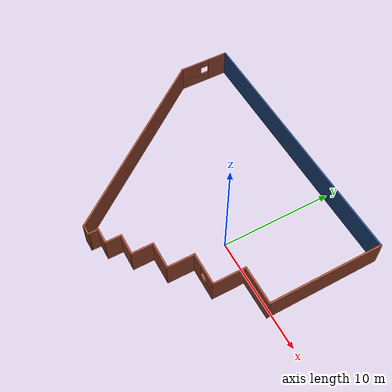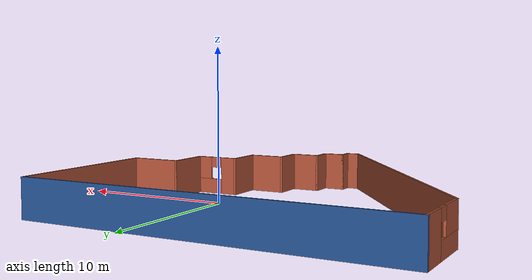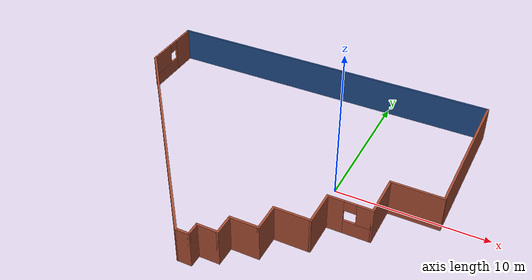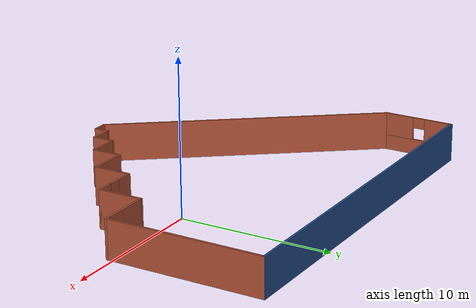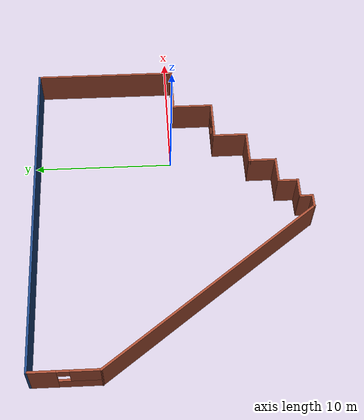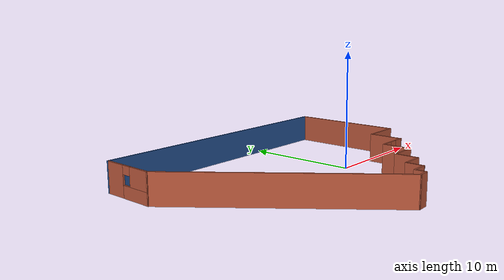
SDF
<?xml version='1.0'?>
<sdf version='1.6'>
  <model name='building_1'>
    <pose frame=''>-4.9877 0.041849 0 0 -0 0</pose>
    <link name='Wall_0'>
      <collision name='Wall_0_Collision'>
        <geometry>
          <box>
            <size>1 0.15 2.5</size>
          </box>
        </geometry>
        <pose frame=''>0 0 1.25 0 -0 0</pose>
      </collision>
      <visual name='Wall_0_Visual'>
        <pose frame=''>0 0 1.25 0 -0 0</pose>
        <geometry>
          <box>
            <size>1 0.15 2.5</size>
          </box>
        </geometry>
        <material>
          <script>
            <uri>file://media/materials/scripts/gazebo.material</uri>
            <name>Gazebo/Bricks</name>
          </script>
          <ambient>1 1 1 1</ambient>
        </material>
        <meta>
          <layer>0</layer>
        </meta>
      </visual>
      <pose frame=''>-0.234942 -9.66003 0 0 -0 0</pose>
    </link>
    <link name='Wall_1'>
      <collision name='Wall_1_Collision'>
        <geometry>
          <box>
            <size>1 0.15 2.5</size>
          </box>
        </geometry>
        <pose frame=''>0 0 1.25 0 -0 0</pose>
      </collision>
      <visual name='Wall_1_Visual'>
        <pose frame=''>0 0 1.25 0 -0 0</pose>
        <geometry>
          <box>
            <size>1 0.15 2.5</size>
          </box>
        </geometry>
        <material>
          <script>
            <uri>file://media/materials/scripts/gazebo.material</uri>
            <name>Gazebo/Bricks</name>
          </script>
          <ambient>1 1 1 1</ambient>
        </material>
        <meta>
          <layer>0</layer>
        </meta>
      </visual>
      <pose frame=''>0.190057 -9.23503 0 0 -0 1.5708</pose>
    </link>
    <link name='Wall_10'>
      <collision name='Wall_10_Collision'>
        <geometry>
          <box>
            <size>3.5 0.15 2.5</size>
          </box>
        </geometry>
        <pose frame=''>0 0 1.25 0 -0 0</pose>
      </collision>
      <visual name='Wall_10_Visual'>
        <pose frame=''>0 0 1.25 0 -0 0</pose>
        <geometry>
          <box>
            <size>3.5 0.15 2.5</size>
          </box>
        </geometry>
        <material>
          <script>
            <uri>file://media/materials/scripts/gazebo.material</uri>
            <name>Gazebo/Bricks</name>
          </script>
          <ambient>1 1 1 1</ambient>
        </material>
        <meta>
          <layer>0</layer>
        </meta>
      </visual>
      <pose frame=''>10.2651 -0.410032 0 0 -0 0</pose>
    </link>
    <link name='Wall_11'>
      <collision name='Wall_11_Collision'>
        <geometry>
          <box>
            <size>10.25 0.15 2.5</size>
          </box>
        </geometry>
        <pose frame=''>0 0 1.25 0 -0 0</pose>
      </collision>
      <visual name='Wall_11_Visual'>
        <pose frame=''>0 0 1.25 0 -0 0</pose>
        <geometry>
          <box>
            <size>10.25 0.15 2.5</size>
          </box>
        </geometry>
        <material>
          <script>
            <uri>file://media/materials/scripts/gazebo.material</uri>
            <name>Gazebo/Bricks</name>
          </script>
          <ambient>1 1 1 1</ambient>
        </material>
        <meta>
          <layer>0</layer>
        </meta>
      </visual>
      <pose frame=''>11.9399 4.64006 0 0 -0 1.57083</pose>
    </link>
    <link name='Wall_12'>
      <collision name='Wall_12_Collision'>
        <geometry>
          <box>
            <size>24 0.15 2.5</size>
          </box>
        </geometry>
        <pose frame=''>0 0 1.25 0 -0 0</pose>
      </collision>
      <visual name='Wall_12_Visual'>
        <pose frame=''>0 0 1.25 0 -0 0</pose>
        <geometry>
          <box>
            <size>24 0.15 2.5</size>
          </box>
        </geometry>
        <material>
          <script>
            <uri>file://media/materials/scripts/gazebo.material</uri>
            <name>Gazebo/Grey</name>
          </script>
          <ambient>0.12549 0.290196 0.529412 1</ambient>
        </material>
        <meta>
          <layer>0</layer>
        </meta>
      </visual>
      <pose frame=''>0.014703 9.69015 0 0 -0 3.14159</pose>
    </link>
    <link name='Wall_13'>
      <pose frame=''>-11.9101 7.39006 0 0 -0 -1.57072</pose>
      <visual name='Wall_13_Visual_0'>
        <pose frame=''>-1.41316 0 1.25 0 -0 0</pose>
        <geometry>
          <box>
            <size>1.92368 0.15 2.5</size>
          </box>
        </geometry>
        <material>
          <script>
            <uri>file://media/materials/scripts/gazebo.material</uri>
            <name>Gazebo/Bricks</name>
          </script>
          <ambient>1 1 1 1</ambient>
        </material>
        <meta>
          <layer>0</layer>
        </meta>
      </visual>
      <collision name='Wall_13_Collision_0'>
        <geometry>
          <box>
            <size>1.92368 0.15 2.5</size>
          </box>
        </geometry>
        <pose frame=''>-1.41316 0 1.25 0 -0 0</pose>
      </collision>
      <visual name='Wall_13_Visual_1'>
        <pose frame=''>0.96184 0 0.5 0 -0 0</pose>
        <geometry>
          <box>
            <size>2.82632 0.15 1</size>
          </box>
        </geometry>
        <material>
          <script>
            <uri>file://media/materials/scripts/gazebo.material</uri>
            <name>Gazebo/Bricks</name>
          </script>
          <ambient>1 1 1 1</ambient>
        </material>
        <meta>
          <layer>0</layer>
        </meta>
      </visual>
      <collision name='Wall_13_Collision_1'>
        <geometry>
          <box>
            <size>2.82632 0.15 1</size>
          </box>
        </geometry>
        <pose frame=''>0.96184 0 0.5 0 -0 0</pose>
      </collision>
      <visual name='Wall_13_Visual_2'>
        <pose frame=''>1.36184 0 1.75 0 -0 0</pose>
        <geometry>
          <box>
            <size>2.02632 0.15 1.5</size>
          </box>
        </geometry>
        <material>
          <script>
            <uri>file://media/materials/scripts/gazebo.material</uri>
            <name>Gazebo/Bricks</name>
          </script>
          <ambient>1 1 1 1</ambient>
        </material>
        <meta>
          <layer>0</layer>
        </meta>
      </visual>
      <collision name='Wall_13_Collision_2'>
        <geometry>
          <box>
            <size>2.02632 0.15 1.5</size>
          </box>
        </geometry>
        <pose frame=''>1.36184 0 1.75 0 -0 0</pose>
      </collision>
      <visual name='Wall_13_Visual_3'>
        <pose frame=''>-0.051321 0 2.15 0 -0 0</pose>
        <geometry>
          <box>
            <size>0.8 0.15 0.7</size>
          </box>
        </geometry>
        <material>
          <script>
            <uri>file://media/materials/scripts/gazebo.material</uri>
            <name>Gazebo/Bricks</name>
          </script>
          <ambient>1 1 1 1</ambient>
        </material>
        <meta>
          <layer>0</layer>
        </meta>
      </visual>
      <collision name='Wall_13_Collision_3'>
        <geometry>
          <box>
            <size>0.8 0.15 0.7</size>
          </box>
        </geometry>
        <pose frame=''>-0.051321 0 2.15 0 -0 0</pose>
      </collision>
    </link>
    <link name='Wall_14'>
      <collision name='Wall_14_Collision'>
        <geometry>
          <box>
            <size>18.7006 0.15 2.5</size>
          </box>
        </geometry>
        <pose frame=''>0 0 1.25 0 -0 0</pose>
      </collision>
      <visual name='Wall_14_Visual'>
        <pose frame=''>0 0 1.25 0 -0 0</pose>
        <geometry>
          <box>
            <size>18.7006 0.15 2.5</size>
          </box>
        </geometry>
        <material>
          <script>
            <uri>file://media/materials/scripts/gazebo.material</uri>
            <name>Gazebo/Bricks</name>
          </script>
          <ambient>1 1 1 1</ambient>
        </material>
        <meta>
          <layer>0</layer>
        </meta>
      </visual>
      <pose frame=''>-6.28494 -2.28503 0 0 -0 -0.919209</pose>
    </link>
    <link name='Wall_2'>
      <collision name='Wall_2_Collision'>
        <geometry>
          <box>
            <size>1.5 0.15 2.5</size>
          </box>
        </geometry>
        <pose frame=''>0 0 1.25 0 -0 0</pose>
      </collision>
      <visual name='Wall_2_Visual'>
        <pose frame=''>0 0 1.25 0 -0 0</pose>
        <geometry>
          <box>
            <size>1.5 0.15 2.5</size>
          </box>
        </geometry>
        <material>
          <script>
            <uri>file://media/materials/scripts/gazebo.material</uri>
            <name>Gazebo/Bricks</name>
          </script>
          <ambient>1 1 1 1</ambient>
        </material>
        <meta>
          <layer>0</layer>
        </meta>
      </visual>
      <pose frame=''>0.865057 -8.81003 0 0 -0 0</pose>
    </link>
    <link name='Wall_3'>
      <collision name='Wall_3_Collision'>
        <geometry>
          <box>
            <size>1.5 0.15 2.5</size>
          </box>
        </geometry>
        <pose frame=''>0 0 1.25 0 -0 0</pose>
      </collision>
      <visual name='Wall_3_Visual'>
        <pose frame=''>0 0 1.25 0 -0 0</pose>
        <geometry>
          <box>
            <size>1.5 0.15 2.5</size>
          </box>
        </geometry>
        <material>
          <script>
            <uri>file://media/materials/scripts/gazebo.material</uri>
            <name>Gazebo/Bricks</name>
          </script>
          <ambient>1 1 1 1</ambient>
        </material>
        <meta>
          <layer>0</layer>
        </meta>
      </visual>
      <pose frame=''>1.54006 -8.13503 0 0 -0 1.5708</pose>
    </link>
    <link name='Wall_4'>
      <collision name='Wall_4_Collision'>
        <geometry>
          <box>
            <size>2 0.15 2.5</size>
          </box>
        </geometry>
        <pose frame=''>0 0 1.25 0 -0 0</pose>
      </collision>
      <visual name='Wall_4_Visual'>
        <pose frame=''>0 0 1.25 0 -0 0</pose>
        <geometry>
          <box>
            <size>2 0.15 2.5</size>
          </box>
        </geometry>
        <material>
          <script>
            <uri>file://media/materials/scripts/gazebo.material</uri>
            <name>Gazebo/Bricks</name>
          </script>
          <ambient>1 1 1 1</ambient>
        </material>
        <meta>
          <layer>0</layer>
        </meta>
      </visual>
      <pose frame=''>2.46506 -7.46003 0 0 -0 0</pose>
    </link>
    <link name='Wall_5'>
      <collision name='Wall_5_Collision'>
        <geometry>
          <box>
            <size>2 0.15 2.5</size>
          </box>
        </geometry>
        <pose frame=''>0 0 1.25 0 -0 0</pose>
      </collision>
      <visual name='Wall_5_Visual'>
        <pose frame=''>0 0 1.25 0 -0 0</pose>
        <geometry>
          <box>
            <size>2 0.15 2.5</size>
          </box>
        </geometry>
        <material>
          <script>
            <uri>file://media/materials/scripts/gazebo.material</uri>
            <name>Gazebo/Bricks</name>
          </script>
          <ambient>1 1 1 1</ambient>
        </material>
        <meta>
          <layer>0</layer>
        </meta>
      </visual>
      <pose frame=''>3.39006 -6.53503 0 0 -0 1.5708</pose>
    </link>
    <link name='Wall_6'>
      <collision name='Wall_6_Collision'>
        <geometry>
          <box>
            <size>2.5 0.15 2.5</size>
          </box>
        </geometry>
        <pose frame=''>0 0 1.25 0 -0 0</pose>
      </collision>
      <visual name='Wall_6_Visual'>
        <pose frame=''>0 0 1.25 0 -0 0</pose>
        <geometry>
          <box>
            <size>2.5 0.15 2.5</size>
          </box>
        </geometry>
        <material>
          <script>
            <uri>file://media/materials/scripts/gazebo.material</uri>
            <name>Gazebo/Bricks</name>
          </script>
          <ambient>1 1 1 1</ambient>
        </material>
        <meta>
          <layer>0</layer>
        </meta>
      </visual>
      <pose frame=''>4.56506 -5.61003 0 0 -0 0</pose>
    </link>
    <link name='Wall_7'>
      <collision name='Wall_7_Collision'>
        <geometry>
          <box>
            <size>2.5 0.15 2.5</size>
          </box>
        </geometry>
        <pose frame=''>0 0 1.25 0 -0 0</pose>
      </collision>
      <visual name='Wall_7_Visual'>
        <pose frame=''>0 0 1.25 0 -0 0</pose>
        <geometry>
          <box>
            <size>2.5 0.15 2.5</size>
          </box>
        </geometry>
        <material>
          <script>
            <uri>file://media/materials/scripts/gazebo.material</uri>
            <name>Gazebo/Bricks</name>
          </script>
          <ambient>1 1 1 1</ambient>
        </material>
        <meta>
          <layer>0</layer>
        </meta>
      </visual>
      <pose frame=''>5.74006 -4.43503 0 0 -0 1.5708</pose>
    </link>
    <link name='Wall_8'>
      <pose frame=''>7.16506 -3.26003 0 0 -0 0</pose>
      <visual name='Wall_8_Visual_0'>
        <pose frame=''>-0.930199 0 1.25 0 -0 0</pose>
        <geometry>
          <box>
            <size>1.1396 0.15 2.5</size>
          </box>
        </geometry>
        <material>
          <script>
            <uri>file://media/materials/scripts/gazebo.material</uri>
            <name>Gazebo/Bricks</name>
          </script>
          <ambient>1 1 1 1</ambient>
        </material>
        <meta>
          <layer>0</layer>
        </meta>
      </visual>
      <collision name='Wall_8_Collision_0'>
        <geometry>
          <box>
            <size>1.1396 0.15 2.5</size>
          </box>
        </geometry>
        <pose frame=''>-0.930199 0 1.25 0 -0 0</pose>
      </collision>
      <visual name='Wall_8_Visual_1'>
        <pose frame=''>0.569801 0 0.5 0 -0 0</pose>
        <geometry>
          <box>
            <size>1.8604 0.15 1</size>
          </box>
        </geometry>
        <material>
          <script>
            <uri>file://media/materials/scripts/gazebo.material</uri>
            <name>Gazebo/Bricks</name>
          </script>
          <ambient>1 1 1 1</ambient>
        </material>
        <meta>
          <layer>0</layer>
        </meta>
      </visual>
      <collision name='Wall_8_Collision_1'>
        <geometry>
          <box>
            <size>1.8604 0.15 1</size>
          </box>
        </geometry>
        <pose frame=''>0.569801 0 0.5 0 -0 0</pose>
      </collision>
      <visual name='Wall_8_Visual_2'>
        <pose frame=''>0.969801 0 1.75 0 -0 0</pose>
        <geometry>
          <box>
            <size>1.0604 0.15 1.5</size>
          </box>
        </geometry>
        <material>
          <script>
            <uri>file://media/materials/scripts/gazebo.material</uri>
            <name>Gazebo/Bricks</name>
          </script>
          <ambient>1 1 1 1</ambient>
        </material>
        <meta>
          <layer>0</layer>
        </meta>
      </visual>
      <collision name='Wall_8_Collision_2'>
        <geometry>
          <box>
            <size>1.0604 0.15 1.5</size>
          </box>
        </geometry>
        <pose frame=''>0.969801 0 1.75 0 -0 0</pose>
      </collision>
      <visual name='Wall_8_Visual_3'>
        <pose frame=''>0.039603 0 2.15 0 -0 0</pose>
        <geometry>
          <box>
            <size>0.8 0.15 0.7</size>
          </box>
        </geometry>
        <material>
          <script>
            <uri>file://media/materials/scripts/gazebo.material</uri>
            <name>Gazebo/Bricks</name>
          </script>
          <ambient>1 1 1 1</ambient>
        </material>
        <meta>
          <layer>0</layer>
        </meta>
      </visual>
      <collision name='Wall_8_Collision_3'>
        <geometry>
          <box>
            <size>0.8 0.15 0.7</size>
          </box>
        </geometry>
        <pose frame=''>0.039603 0 2.15 0 -0 0</pose>
      </collision>
    </link>
    <link name='Wall_9'>
      <collision name='Wall_9_Collision'>
        <geometry>
          <box>
            <size>3 0.15 2.5</size>
          </box>
        </geometry>
        <pose frame=''>0 0 1.25 0 -0 0</pose>
      </collision>
      <visual name='Wall_9_Visual'>
        <pose frame=''>0 0 1.25 0 -0 0</pose>
        <geometry>
          <box>
            <size>3 0.15 2.5</size>
          </box>
        </geometry>
        <material>
          <script>
            <uri>file://media/materials/scripts/gazebo.material</uri>
            <name>Gazebo/Bricks</name>
          </script>
          <ambient>1 1 1 1</ambient>
        </material>
        <meta>
          <layer>0</layer>
        </meta>
      </visual>
      <pose frame=''>8.59006 -1.83503 0 0 -0 1.5708</pose>
    </link>
    <static>1</static>
  </model>
</sdf>
